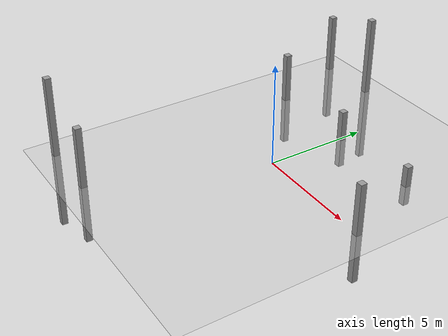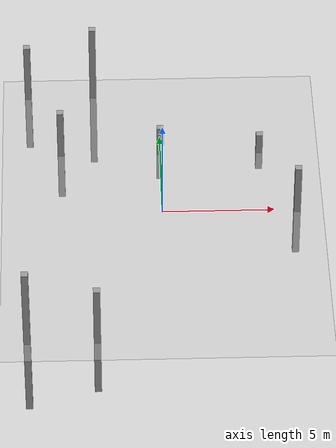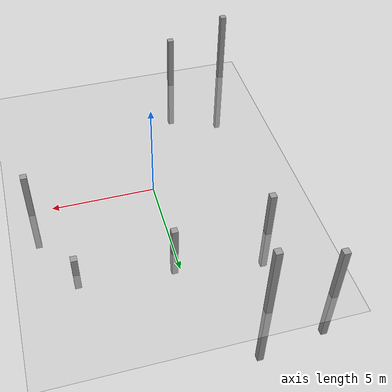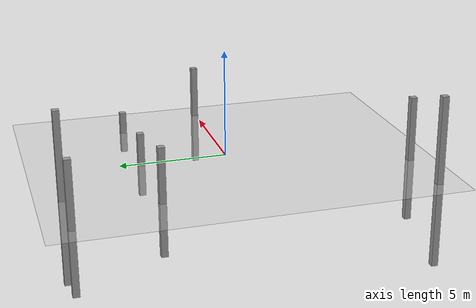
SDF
<sdf version="1.4">
 <world name="default">
  <include><uri>model://ground_plane</uri></include>
  <include><uri>model://sun</uri></include>
  <include><uri>model://unit_box_0</uri></include>
  <include><uri>model://unit_box_1</uri></include>
  <include><uri>model://unit_box_10</uri></include>
  <include><uri>model://unit_box_11</uri></include>
  <include><uri>model://unit_box_12</uri></include>
  <include><uri>model://unit_box_13</uri></include>
  <include><uri>model://unit_box_14</uri></include>
  <include><uri>model://unit_box_15</uri></include>
  <plugin name="ros_interface_plugin" filename="librotors_gazebo_ros_interface_plugin.so"/>
  <spherical_coordinates>
   <surface_model>EARTH_WGS84</surface_model>
   <latitude_deg>47.3667</latitude_deg>
   <longitude_deg>8.5500</longitude_deg>
   <elevation>500.0</elevation>
   <heading_deg>0</heading_deg>
  </spherical_coordinates>
  <physics type="ode">
   <ode>
    <solver><type>quick</type><iters>1000</iters><sor>1.3</sor></solver>
    <constraints>
     <cfm>0</cfm>
     <erp>0.2</erp>
     <contact_max_correcting_vel>100</contact_max_correcting_vel>
     <contact_surface_layer>0.001</contact_surface_layer>
    </constraints>
   </ode>
   <max_step_size>0.01</max_step_size>
   <real_time_factor>1</real_time_factor>
   <real_time_update_rate>100</real_time_update_rate>
   <gravity>0 0 -9.8</gravity>
  </physics>
 </world>
</sdf>

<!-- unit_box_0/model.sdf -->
<sdf version='1.6'>
  <model name='unit_box_0'>
    <link name='link'>
      <pose frame=''>-3 -4 0 0 -0 0</pose>
      <inertial>
        <mass>1</mass>
        <inertia>
          <ixx>0.166667</ixx>
          <ixy>0</ixy>
          <ixz>0</ixz>
          <iyy>0.166667</iyy>
          <iyz>0</iyz>
          <izz>0.166667</izz>
        </inertia>
        <pose frame=''>-3 -4 0 0 -0 0</pose>
      </inertial>
      <self_collide>0</self_collide>
      <kinematic>0</kinematic>
      <gravity>1</gravity>
      <visual name='visual'>
        <geometry>
          <box>
            <size>0.3 0.3 8</size>
          </box>
        </geometry>
        <material>
          <script>
            <name>Gazebo/Grey</name>
            <uri>file://media/materials/scripts/gazebo.material</uri>
          </script>
          <ambient>0.3 0.3 0.3 1</ambient>
          <diffuse>0.7 0.7 0.7 1</diffuse>
          <specular>0.01 0.01 0.01 1</specular>
          <emissive>0 0 0 1</emissive>
          <shader type='vertex'>
            <normal_map>__default__</normal_map>
          </shader>
        </material>
        <pose frame=''>-3 -4 0 0 -0 0</pose>
        <cast_shadows>1</cast_shadows>
        <transparency>0</transparency>
      </visual>
      <collision name='collision'>
        <laser_retro>0</laser_retro>
        <max_contacts>10</max_contacts>
        <pose frame=''>-3 -4 0 0 -0 0</pose>
        <geometry>
          <box>
            <size>0.3 0.3 8</size>
          </box>
        </geometry>
        <surface>
          <friction>
            <ode>
              <mu>1</mu>
              <mu2>1</mu2>
              <fdir1>0 0 0</fdir1>
              <slip1>0</slip1>
              <slip2>0</slip2>
            </ode>
            <torsional>
              <coefficient>1</coefficient>
              <patch_radius>0</patch_radius>
              <surface_radius>0</surface_radius>
              <use_patch_radius>1</use_patch_radius>
              <ode>
                <slip>0</slip>
              </ode>
            </torsional>
          </friction>
          <bounce>
            <restitution_coefficient>0</restitution_coefficient>
            <threshold>1e+06</threshold>
          </bounce>
          <contact>
            <collide_without_contact>0</collide_without_contact>
            <collide_without_contact_bitmask>1</collide_without_contact_bitmask>
            <collide_bitmask>1</collide_bitmask>
            <ode>
              <soft_cfm>0</soft_cfm>
              <soft_erp>0.2</soft_erp>
              <kp>1e+13</kp>
              <kd>1</kd>
              <max_vel>0.01</max_vel>
              <min_depth>0</min_depth>
            </ode>
            <bullet>
              <split_impulse>1</split_impulse>
              <split_impulse_penetration_threshold>-0.01</split_impulse_penetration_threshold>
              <soft_cfm>0</soft_cfm>
              <soft_erp>0.2</soft_erp>
              <kp>1e+13</kp>
              <kd>1</kd>
            </bullet>
          </contact>
        </surface>
      </collision>
    </link>
    <static>0</static>
    <allow_auto_disable>1</allow_auto_disable>
  </model>
</sdf>

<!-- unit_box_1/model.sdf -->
<sdf version='1.6'>
  <model name='unit_box_1'>
    <link name='link'>
      <pose frame=''>-1.5 -4 0 0 -0 0</pose>
      <inertial>
        <mass>1</mass>
        <inertia>
          <ixx>0.166667</ixx>
          <ixy>0</ixy>
          <ixz>0</ixz>
          <iyy>0.166667</iyy>
          <iyz>0</iyz>
          <izz>0.166667</izz>
        </inertia>
        <pose frame=''>-1.5 -4 0 0 -0 0</pose>
      </inertial>
      <self_collide>0</self_collide>
      <kinematic>0</kinematic>
      <gravity>1</gravity>
      <visual name='visual'>
        <geometry>
          <box>
            <size>0.3 0.3 6</size>
          </box>
        </geometry>
        <material>
          <script>
            <name>Gazebo/Grey</name>
            <uri>file://media/materials/scripts/gazebo.material</uri>
          </script>
          <ambient>0.3 0.3 0.3 1</ambient>
          <diffuse>0.7 0.7 0.7 1</diffuse>
          <specular>0.01 0.01 0.01 1</specular>
          <emissive>0 0 0 1</emissive>
          <shader type='vertex'>
            <normal_map>__default__</normal_map>
          </shader>
        </material>
        <pose frame=''>-1.5 -4 0 0 -0 0</pose>
        <cast_shadows>1</cast_shadows>
        <transparency>0</transparency>
      </visual>
      <collision name='collision'>
        <laser_retro>0</laser_retro>
        <max_contacts>10</max_contacts>
        <pose frame=''>-1.5 -4 0 0 -0 0</pose>
        <geometry>
          <box>
            <size>0.3 0.3 6</size>
          </box>
        </geometry>
        <surface>
          <friction>
            <ode>
              <mu>1</mu>
              <mu2>1</mu2>
              <fdir1>0 0 0</fdir1>
              <slip1>0</slip1>
              <slip2>0</slip2>
            </ode>
            <torsional>
              <coefficient>1</coefficient>
              <patch_radius>0</patch_radius>
              <surface_radius>0</surface_radius>
              <use_patch_radius>1</use_patch_radius>
              <ode>
                <slip>0</slip>
              </ode>
            </torsional>
          </friction>
          <bounce>
            <restitution_coefficient>0</restitution_coefficient>
            <threshold>1e+06</threshold>
          </bounce>
          <contact>
            <collide_without_contact>0</collide_without_contact>
            <collide_without_contact_bitmask>1</collide_without_contact_bitmask>
            <collide_bitmask>1</collide_bitmask>
            <ode>
              <soft_cfm>0</soft_cfm>
              <soft_erp>0.2</soft_erp>
              <kp>1e+13</kp>
              <kd>1</kd>
              <max_vel>0.01</max_vel>
              <min_depth>0</min_depth>
            </ode>
            <bullet>
              <split_impulse>1</split_impulse>
              <split_impulse_penetration_threshold>-0.01</split_impulse_penetration_threshold>
              <soft_cfm>0</soft_cfm>
              <soft_erp>0.2</soft_erp>
              <kp>1e+13</kp>
              <kd>1</kd>
            </bullet>
          </contact>
        </surface>
      </collision>
    </link>
    <static>0</static>
    <allow_auto_disable>1</allow_auto_disable>
  </model>
</sdf>

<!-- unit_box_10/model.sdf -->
<sdf version='1.6'>
  <model name='unit_box_10'>
    <link name='link'>
      <pose frame=''>3 0 0 0 -0 0</pose>
      <inertial>
        <mass>1</mass>
        <inertia>
          <ixx>0.166667</ixx>
          <ixy>0</ixy>
          <ixz>0</ixz>
          <iyy>0.166667</iyy>
          <iyz>0</iyz>
          <izz>0.166667</izz>
        </inertia>
        <pose frame=''>3 0 0 0 -0 0</pose>
      </inertial>
      <self_collide>0</self_collide>
      <kinematic>0</kinematic>
      <gravity>1</gravity>
      <visual name='visual'>
        <geometry>
          <box>
            <size>0.3 0.3 5</size>
          </box>
        </geometry>
        <material>
          <script>
            <name>Gazebo/Grey</name>
            <uri>file://media/materials/scripts/gazebo.material</uri>
          </script>
          <ambient>0.3 0.3 0.3 1</ambient>
          <diffuse>0.7 0.7 0.7 1</diffuse>
          <specular>0.01 0.01 0.01 1</specular>
          <emissive>0 0 0 1</emissive>
          <shader type='vertex'>
            <normal_map>__default__</normal_map>
          </shader>
        </material>
        <pose frame=''>3 0 0 0 -0 0</pose>
        <cast_shadows>1</cast_shadows>
        <transparency>0</transparency>
      </visual>
      <collision name='collision'>
        <laser_retro>0</laser_retro>
        <max_contacts>10</max_contacts>
        <pose frame=''>3 0 0 0 -0 0</pose>
        <geometry>
          <box>
            <size>0.3 0.3 5</size>
          </box>
        </geometry>
        <surface>
          <friction>
            <ode>
              <mu>1</mu>
              <mu2>1</mu2>
              <fdir1>0 0 0</fdir1>
              <slip1>0</slip1>
              <slip2>0</slip2>
            </ode>
            <torsional>
              <coefficient>1</coefficient>
              <patch_radius>0</patch_radius>
              <surface_radius>0</surface_radius>
              <use_patch_radius>1</use_patch_radius>
              <ode>
                <slip>0</slip>
              </ode>
            </torsional>
          </friction>
          <bounce>
            <restitution_coefficient>0</restitution_coefficient>
            <threshold>1e+06</threshold>
          </bounce>
          <contact>
            <collide_without_contact>0</collide_without_contact>
            <collide_without_contact_bitmask>1</collide_without_contact_bitmask>
            <collide_bitmask>1</collide_bitmask>
            <ode>
              <soft_cfm>0</soft_cfm>
              <soft_erp>0.2</soft_erp>
              <kp>1e+13</kp>
              <kd>1</kd>
              <max_vel>0.01</max_vel>
              <min_depth>0</min_depth>
            </ode>
            <bullet>
              <split_impulse>1</split_impulse>
              <split_impulse_penetration_threshold>-0.01</split_impulse_penetration_threshold>
              <soft_cfm>0</soft_cfm>
              <soft_erp>0.2</soft_erp>
              <kp>1e+13</kp>
              <kd>1</kd>
            </bullet>
          </contact>
        </surface>
      </collision>
    </link>
    <static>0</static>
    <allow_auto_disable>1</allow_auto_disable>
  </model>
</sdf>

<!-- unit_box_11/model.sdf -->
<sdf version='1.6'>
  <model name='unit_box_11'>
    <link name='link'>
      <pose frame=''>-2.25 2 0 0 -0 0</pose>
      <inertial>
        <mass>1</mass>
        <inertia>
          <ixx>0.166667</ixx>
          <ixy>0</ixy>
          <ixz>0</ixz>
          <iyy>0.166667</iyy>
          <iyz>0</iyz>
          <izz>0.166667</izz>
        </inertia>
        <pose frame=''>-2.25 2 0 0 -0 0</pose>
      </inertial>
      <self_collide>0</self_collide>
      <kinematic>0</kinematic>
      <gravity>1</gravity>
      <visual name='visual'>
        <geometry>
          <box>
            <size>0.3 0.3 5</size>
          </box>
        </geometry>
        <material>
          <script>
            <name>Gazebo/Grey</name>
            <uri>file://media/materials/scripts/gazebo.material</uri>
          </script>
          <ambient>0.3 0.3 0.3 1</ambient>
          <diffuse>0.7 0.7 0.7 1</diffuse>
          <specular>0.01 0.01 0.01 1</specular>
          <emissive>0 0 0 1</emissive>
          <shader type='vertex'>
            <normal_map>__default__</normal_map>
          </shader>
        </material>
        <pose frame=''>-2.25 2 0 0 -0 0</pose>
        <cast_shadows>1</cast_shadows>
        <transparency>0</transparency>
      </visual>
      <collision name='collision'>
        <laser_retro>0</laser_retro>
        <max_contacts>10</max_contacts>
        <pose frame=''>-2.25 2 0 0 -0 0</pose>
        <geometry>
          <box>
            <size>0.3 0.3 5</size>
          </box>
        </geometry>
        <surface>
          <friction>
            <ode>
              <mu>1</mu>
              <mu2>1</mu2>
              <fdir1>0 0 0</fdir1>
              <slip1>0</slip1>
              <slip2>0</slip2>
            </ode>
            <torsional>
              <coefficient>1</coefficient>
              <patch_radius>0</patch_radius>
              <surface_radius>0</surface_radius>
              <use_patch_radius>1</use_patch_radius>
              <ode>
                <slip>0</slip>
              </ode>
            </torsional>
          </friction>
          <bounce>
            <restitution_coefficient>0</restitution_coefficient>
            <threshold>1e+06</threshold>
          </bounce>
          <contact>
            <collide_without_contact>0</collide_without_contact>
            <collide_without_contact_bitmask>1</collide_without_contact_bitmask>
            <collide_bitmask>1</collide_bitmask>
            <ode>
              <soft_cfm>0</soft_cfm>
              <soft_erp>0.2</soft_erp>
              <kp>1e+13</kp>
              <kd>1</kd>
              <max_vel>0.01</max_vel>
              <min_depth>0</min_depth>
            </ode>
            <bullet>
              <split_impulse>1</split_impulse>
              <split_impulse_penetration_threshold>-0.01</split_impulse_penetration_threshold>
              <soft_cfm>0</soft_cfm>
              <soft_erp>0.2</soft_erp>
              <kp>1e+13</kp>
              <kd>1</kd>
            </bullet>
          </contact>
        </surface>
      </collision>
    </link>
    <static>0</static>
    <allow_auto_disable>1</allow_auto_disable>
  </model>
</sdf>

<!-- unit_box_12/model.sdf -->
<sdf version='1.6'>
  <model name='unit_box_12'>
    <link name='link'>
      <pose frame=''>0 2 0 0 -0 0</pose>
      <inertial>
        <mass>1</mass>
        <inertia>
          <ixx>0.166667</ixx>
          <ixy>0</ixy>
          <ixz>0</ixz>
          <iyy>0.166667</iyy>
          <iyz>0</iyz>
          <izz>0.166667</izz>
        </inertia>
        <pose frame=''>0 2 0 0 -0 0</pose>
      </inertial>
      <self_collide>0</self_collide>
      <kinematic>0</kinematic>
      <gravity>1</gravity>
      <visual name='visual'>
        <geometry>
          <box>
            <size>0.3 0.3 3</size>
          </box>
        </geometry>
        <material>
          <script>
            <name>Gazebo/Grey</name>
            <uri>file://media/materials/scripts/gazebo.material</uri>
          </script>
          <ambient>0.3 0.3 0.3 1</ambient>
          <diffuse>0.7 0.7 0.7 1</diffuse>
          <specular>0.01 0.01 0.01 1</specular>
          <emissive>0 0 0 1</emissive>
          <shader type='vertex'>
            <normal_map>__default__</normal_map>
          </shader>
        </material>
        <pose frame=''>0 2 0 0 -0 0</pose>
        <cast_shadows>1</cast_shadows>
        <transparency>0</transparency>
      </visual>
      <collision name='collision'>
        <laser_retro>0</laser_retro>
        <max_contacts>10</max_contacts>
        <pose frame=''>0 2 0 0 -0 0</pose>
        <geometry>
          <box>
            <size>0.3 0.3 3</size>
          </box>
        </geometry>
        <surface>
          <friction>
            <ode>
              <mu>1</mu>
              <mu2>1</mu2>
              <fdir1>0 0 0</fdir1>
              <slip1>0</slip1>
              <slip2>0</slip2>
            </ode>
            <torsional>
              <coefficient>1</coefficient>
              <patch_radius>0</patch_radius>
              <surface_radius>0</surface_radius>
              <use_patch_radius>1</use_patch_radius>
              <ode>
                <slip>0</slip>
              </ode>
            </torsional>
          </friction>
          <bounce>
            <restitution_coefficient>0</restitution_coefficient>
            <threshold>1e+06</threshold>
          </bounce>
          <contact>
            <collide_without_contact>0</collide_without_contact>
            <collide_without_contact_bitmask>1</collide_without_contact_bitmask>
            <collide_bitmask>1</collide_bitmask>
            <ode>
              <soft_cfm>0</soft_cfm>
              <soft_erp>0.2</soft_erp>
              <kp>1e+13</kp>
              <kd>1</kd>
              <max_vel>0.01</max_vel>
              <min_depth>0</min_depth>
            </ode>
            <bullet>
              <split_impulse>1</split_impulse>
              <split_impulse_penetration_threshold>-0.01</split_impulse_penetration_threshold>
              <soft_cfm>0</soft_cfm>
              <soft_erp>0.2</soft_erp>
              <kp>1e+13</kp>
              <kd>1</kd>
            </bullet>
          </contact>
        </surface>
      </collision>
    </link>
    <static>0</static>
    <allow_auto_disable>1</allow_auto_disable>
  </model>
</sdf>

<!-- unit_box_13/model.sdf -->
<sdf version='1.6'>
  <model name='unit_box_13'>
    <link name='link'>
      <pose frame=''>2.25 2 0 0 -0 0</pose>
      <inertial>
        <mass>1</mass>
        <inertia>
          <ixx>0.166667</ixx>
          <ixy>0</ixy>
          <ixz>0</ixz>
          <iyy>0.166667</iyy>
          <iyz>0</iyz>
          <izz>0.166667</izz>
        </inertia>
        <pose frame=''>2.25 2 0 0 -0 0</pose>
      </inertial>
      <self_collide>0</self_collide>
      <kinematic>0</kinematic>
      <gravity>1</gravity>
      <visual name='visual'>
        <geometry>
          <box>
            <size>0.3 0.3 2</size>
          </box>
        </geometry>
        <material>
          <script>
            <name>Gazebo/Grey</name>
            <uri>file://media/materials/scripts/gazebo.material</uri>
          </script>
          <ambient>0.3 0.3 0.3 1</ambient>
          <diffuse>0.7 0.7 0.7 1</diffuse>
          <specular>0.01 0.01 0.01 1</specular>
          <emissive>0 0 0 1</emissive>
          <shader type='vertex'>
            <normal_map>__default__</normal_map>
          </shader>
        </material>
        <pose frame=''>2.25 2 0 0 -0 0</pose>
        <cast_shadows>1</cast_shadows>
        <transparency>0</transparency>
      </visual>
      <collision name='collision'>
        <laser_retro>0</laser_retro>
        <max_contacts>10</max_contacts>
        <pose frame=''>2.25 2 0 0 -0 0</pose>
        <geometry>
          <box>
            <size>0.3 0.3 2</size>
          </box>
        </geometry>
        <surface>
          <friction>
            <ode>
              <mu>1</mu>
              <mu2>1</mu2>
              <fdir1>0 0 0</fdir1>
              <slip1>0</slip1>
              <slip2>0</slip2>
            </ode>
            <torsional>
              <coefficient>1</coefficient>
              <patch_radius>0</patch_radius>
              <surface_radius>0</surface_radius>
              <use_patch_radius>1</use_patch_radius>
              <ode>
                <slip>0</slip>
              </ode>
            </torsional>
          </friction>
          <bounce>
            <restitution_coefficient>0</restitution_coefficient>
            <threshold>1e+06</threshold>
          </bounce>
          <contact>
            <collide_without_contact>0</collide_without_contact>
            <collide_without_contact_bitmask>1</collide_without_contact_bitmask>
            <collide_bitmask>1</collide_bitmask>
            <ode>
              <soft_cfm>0</soft_cfm>
              <soft_erp>0.2</soft_erp>
              <kp>1e+13</kp>
              <kd>1</kd>
              <max_vel>0.01</max_vel>
              <min_depth>0</min_depth>
            </ode>
            <bullet>
              <split_impulse>1</split_impulse>
              <split_impulse_penetration_threshold>-0.01</split_impulse_penetration_threshold>
              <soft_cfm>0</soft_cfm>
              <soft_erp>0.2</soft_erp>
              <kp>1e+13</kp>
              <kd>1</kd>
            </bullet>
          </contact>
        </surface>
      </collision>
    </link>
    <static>0</static>
    <allow_auto_disable>1</allow_auto_disable>
  </model>
</sdf>

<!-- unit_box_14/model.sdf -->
<sdf version='1.6'>
  <model name='unit_box_14'>
    <link name='link'>
      <pose frame=''>-3 4 0 0 -0 0</pose>
      <inertial>
        <mass>1</mass>
        <inertia>
          <ixx>0.166667</ixx>
          <ixy>0</ixy>
          <ixz>0</ixz>
          <iyy>0.166667</iyy>
          <iyz>0</iyz>
          <izz>0.166667</izz>
        </inertia>
        <pose frame=''>-3 4 0 0 -0 0</pose>
      </inertial>
      <self_collide>0</self_collide>
      <kinematic>0</kinematic>
      <gravity>1</gravity>
      <visual name='visual'>
        <geometry>
          <box>
            <size>0.3 0.3 6</size>
          </box>
        </geometry>
        <material>
          <script>
            <name>Gazebo/Grey</name>
            <uri>file://media/materials/scripts/gazebo.material</uri>
          </script>
          <ambient>0.3 0.3 0.3 1</ambient>
          <diffuse>0.7 0.7 0.7 1</diffuse>
          <specular>0.01 0.01 0.01 1</specular>
          <emissive>0 0 0 1</emissive>
          <shader type='vertex'>
            <normal_map>__default__</normal_map>
          </shader>
        </material>
        <pose frame=''>-3 4 0 0 -0 0</pose>
        <cast_shadows>1</cast_shadows>
        <transparency>0</transparency>
      </visual>
      <collision name='collision'>
        <laser_retro>0</laser_retro>
        <max_contacts>10</max_contacts>
        <pose frame=''>-3 4 0 0 -0 0</pose>
        <geometry>
          <box>
            <size>0.3 0.3 6</size>
          </box>
        </geometry>
        <surface>
          <friction>
            <ode>
              <mu>1</mu>
              <mu2>1</mu2>
              <fdir1>0 0 0</fdir1>
              <slip1>0</slip1>
              <slip2>0</slip2>
            </ode>
            <torsional>
              <coefficient>1</coefficient>
              <patch_radius>0</patch_radius>
              <surface_radius>0</surface_radius>
              <use_patch_radius>1</use_patch_radius>
              <ode>
                <slip>0</slip>
              </ode>
            </torsional>
          </friction>
          <bounce>
            <restitution_coefficient>0</restitution_coefficient>
            <threshold>1e+06</threshold>
          </bounce>
          <contact>
            <collide_without_contact>0</collide_without_contact>
            <collide_without_contact_bitmask>1</collide_without_contact_bitmask>
            <collide_bitmask>1</collide_bitmask>
            <ode>
              <soft_cfm>0</soft_cfm>
              <soft_erp>0.2</soft_erp>
              <kp>1e+13</kp>
              <kd>1</kd>
              <max_vel>0.01</max_vel>
              <min_depth>0</min_depth>
            </ode>
            <bullet>
              <split_impulse>1</split_impulse>
              <split_impulse_penetration_threshold>-0.01</split_impulse_penetration_threshold>
              <soft_cfm>0</soft_cfm>
              <soft_erp>0.2</soft_erp>
              <kp>1e+13</kp>
              <kd>1</kd>
            </bullet>
          </contact>
        </surface>
      </collision>
    </link>
    <static>0</static>
    <allow_auto_disable>1</allow_auto_disable>
  </model>
</sdf>

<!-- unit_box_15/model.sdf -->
<sdf version='1.6'>
  <model name='unit_box_15'>
    <link name='link'>
      <pose frame=''>-1.5 4 0 0 -0 0</pose>
      <inertial>
        <mass>1</mass>
        <inertia>
          <ixx>0.166667</ixx>
          <ixy>0</ixy>
          <ixz>0</ixz>
          <iyy>0.166667</iyy>
          <iyz>0</iyz>
          <izz>0.166667</izz>
        </inertia>
        <pose frame=''>-1.5 4 0 0 -0 0</pose>
      </inertial>
      <self_collide>0</self_collide>
      <kinematic>0</kinematic>
      <gravity>1</gravity>
      <visual name='visual'>
        <geometry>
          <box>
            <size>0.3 0.3 8</size>
          </box>
        </geometry>
        <material>
          <script>
            <name>Gazebo/Grey</name>
            <uri>file://media/materials/scripts/gazebo.material</uri>
          </script>
          <ambient>0.3 0.3 0.3 1</ambient>
          <diffuse>0.7 0.7 0.7 1</diffuse>
          <specular>0.01 0.01 0.01 1</specular>
          <emissive>0 0 0 1</emissive>
          <shader type='vertex'>
            <normal_map>__default__</normal_map>
          </shader>
        </material>
        <pose frame=''>-1.5 4 0 0 -0 0</pose>
        <cast_shadows>1</cast_shadows>
        <transparency>0</transparency>
      </visual>
      <collision name='collision'>
        <laser_retro>0</laser_retro>
        <max_contacts>10</max_contacts>
        <pose frame=''>-1.5 4 0 0 -0 0</pose>
        <geometry>
          <box>
            <size>0.3 0.3 8</size>
          </box>
        </geometry>
        <surface>
          <friction>
            <ode>
              <mu>1</mu>
              <mu2>1</mu2>
              <fdir1>0 0 0</fdir1>
              <slip1>0</slip1>
              <slip2>0</slip2>
            </ode>
            <torsional>
              <coefficient>1</coefficient>
              <patch_radius>0</patch_radius>
              <surface_radius>0</surface_radius>
              <use_patch_radius>1</use_patch_radius>
              <ode>
                <slip>0</slip>
              </ode>
            </torsional>
          </friction>
          <bounce>
            <restitution_coefficient>0</restitution_coefficient>
            <threshold>1e+06</threshold>
          </bounce>
          <contact>
            <collide_without_contact>0</collide_without_contact>
            <collide_without_contact_bitmask>1</collide_without_contact_bitmask>
            <collide_bitmask>1</collide_bitmask>
            <ode>
              <soft_cfm>0</soft_cfm>
              <soft_erp>0.2</soft_erp>
              <kp>1e+13</kp>
              <kd>1</kd>
              <max_vel>0.01</max_vel>
              <min_depth>0</min_depth>
            </ode>
            <bullet>
              <split_impulse>1</split_impulse>
              <split_impulse_penetration_threshold>-0.01</split_impulse_penetration_threshold>
              <soft_cfm>0</soft_cfm>
              <soft_erp>0.2</soft_erp>
              <kp>1e+13</kp>
              <kd>1</kd>
            </bullet>
          </contact>
        </surface>
      </collision>
    </link>
    <static>0</static>
    <allow_auto_disable>1</allow_auto_disable>
  </model>
</sdf>
